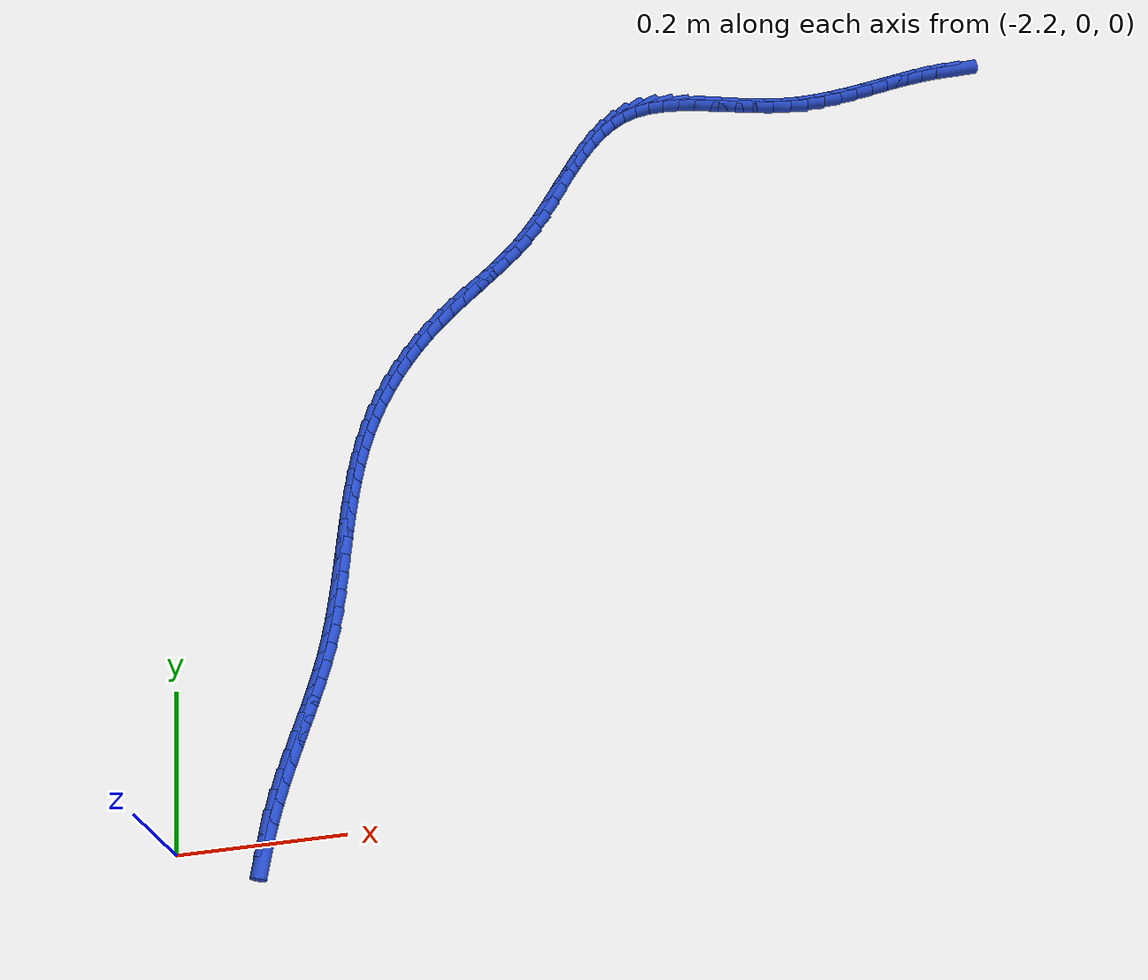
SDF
<sdf version="1.6">
 <world name="default">
  <model name="ground_plane">
   <static>1</static>
   <link name="link">
    <collision name="collision">
     <geometry><plane><normal>0 0 1</normal><size>100 100</size></plane></geometry>
     <surface><friction><ode><mu>100</mu><mu2>50</mu2></ode></friction></surface>
    </collision>
    <visual name="visual">
     <cast_shadows>0</cast_shadows>
     <geometry><plane><normal>0 0 1</normal><size>100 100</size></plane></geometry>
     <material>
      <script><uri>file://media/materials/scripts/gazebo.material</uri><name>Gazebo/WhiteGlow</name></script>
     </material>
    </visual>
   </link>
  </model>
  <model name="line">
   <link name="link_69">
    <pose>-1.0599328898154592 1.0174720443286154 0.01 0 1.57 0.06307592778197377</pose>
    <collision name="collision">
     <geometry><cylinder><radius>0.01</radius><length>0.08</length></cylinder></geometry>
    </collision>
    <visual name="visual">
     <material>
      <script><name>Gazebo/Blue</name><uri>file://media/materials/scripts/gazebo.material</uri></script>
     </material>
     <geometry><cylinder><radius>0.01</radius><length>0.08</length></cylinder></geometry>
    </visual>
   </link>
   <link name="link_70">
    <pose>-1.0827114453354116 1.0160333573258074 0.01 0 1.57 0.11936868673856314</pose>
    <collision name="collision">
     <geometry><cylinder><radius>0.01</radius><length>0.08</length></cylinder></geometry>
    </collision>
    <visual name="visual">
     <material>
      <script><name>Gazebo/Blue</name><uri>file://media/materials/scripts/gazebo.material</uri></script>
     </material>
     <geometry><cylinder><radius>0.01</radius><length>0.08</length></cylinder></geometry>
    </visual>
   </link>
   <link name="link_71">
    <pose>-1.1055416852747948 1.0132951236042014 0.01 0 1.57 0.16039445526237603</pose>
    <collision name="collision">
     <geometry><cylinder><radius>0.01</radius><length>0.08</length></cylinder></geometry>
    </collision>
    <visual name="visual">
     <material>
      <script><name>Gazebo/Blue</name><uri>file://media/materials/scripts/gazebo.material</uri></script>
     </material>
     <geometry><cylinder><radius>0.01</radius><length>0.08</length></cylinder></geometry>
    </visual>
   </link>
   <link name="link_72">
    <pose>-1.1284550450287532 1.0095881036899776 0.01 0 1.57 0.18649344169606036</pose>
    <collision name="collision">
     <geometry><cylinder><radius>0.01</radius><length>0.08</length></cylinder></geometry>
    </collision>
    <visual name="visual">
     <material>
      <script><name>Gazebo/Blue</name><uri>file://media/materials/scripts/gazebo.material</uri></script>
     </material>
     <geometry><cylinder><radius>0.01</radius><length>0.08</length></cylinder></geometry>
    </visual>
   </link>
   <link name="link_73">
    <pose>-1.1514829599924317 1.0052430581093152 0.01 0 1.57 0.1981227975161564</pose>
    <collision name="collision">
     <geometry><cylinder><radius>0.01</radius><length>0.08</length></cylinder></geometry>
    </collision>
    <visual name="visual">
     <material>
      <script><name>Gazebo/Blue</name><uri>file://media/materials/scripts/gazebo.material</uri></script>
     </material>
     <geometry><cylinder><radius>0.01</radius><length>0.08</length></cylinder></geometry>
    </visual>
   </link>
   <link name="link_74">
    <pose>-1.1746568655609722 1.0005907473883944 0.01 0 1.57 0.19568815049745364</pose>
    <collision name="collision">
     <geometry><cylinder><radius>0.01</radius><length>0.08</length></cylinder></geometry>
    </collision>
    <visual name="visual">
     <material>
      <script><name>Gazebo/Blue</name><uri>file://media/materials/scripts/gazebo.material</uri></script>
     </material>
     <geometry><cylinder><radius>0.01</radius><length>0.08</length></cylinder></geometry>
    </visual>
   </link>
   <link name="link_75">
    <pose>-1.1980081971295207 0.9959619320533951 0.01 0 1.57 0.1794790953771534</pose>
    <collision name="collision">
     <geometry><cylinder><radius>0.01</radius><length>0.08</length></cylinder></geometry>
    </collision>
    <visual name="visual">
     <material>
      <script><name>Gazebo/Blue</name><uri>file://media/materials/scripts/gazebo.material</uri></script>
     </material>
     <geometry><cylinder><radius>0.01</radius><length>0.08</length></cylinder></geometry>
    </visual>
   </link>
   <link name="link_76">
    <pose>-1.22156839009322 0.9916873726304964 0.01 0 1.57 0.14968988106606124</pose>
    <collision name="collision">
     <geometry><cylinder><radius>0.01</radius><length>0.08</length></cylinder></geometry>
    </collision>
    <visual name="visual">
     <material>
      <script><name>Gazebo/Blue</name><uri>file://media/materials/scripts/gazebo.material</uri></script>
     </material>
     <geometry><cylinder><radius>0.01</radius><length>0.08</length></cylinder></geometry>
    </visual>
   </link>
   <link name="link_77">
    <pose>-1.2453688798472144 0.9880978296458786 0.01 0 1.57 0.10651386305552568</pose>
    <collision name="collision">
     <geometry><cylinder><radius>0.01</radius><length>0.08</length></cylinder></geometry>
    </collision>
    <visual name="visual">
     <material>
      <script><name>Gazebo/Blue</name><uri>file://media/materials/scripts/gazebo.material</uri></script>
     </material>
     <geometry><cylinder><radius>0.01</radius><length>0.08</length></cylinder></geometry>
    </visual>
   </link>
   <link name="link_78">
    <pose>-1.269441101786649 0.9855240636257214 0.01 0 1.57 0.05030455684609905</pose>
    <collision name="collision">
     <geometry><cylinder><radius>0.01</radius><length>0.08</length></cylinder></geometry>
    </collision>
    <visual name="visual">
     <material>
      <script><name>Gazebo/Blue</name><uri>file://media/materials/scripts/gazebo.material</uri></script>
     </material>
     <geometry><cylinder><radius>0.01</radius><length>0.08</length></cylinder></geometry>
    </visual>
   </link>
   <link name="link_79">
    <pose>-1.2938164913066654 0.9842968350962044 0.01 0 1.57 -0.01815058307747033</pose>
    <collision name="collision">
     <geometry><cylinder><radius>0.01</radius><length>0.08</length></cylinder></geometry>
    </collision>
    <visual name="visual">
     <material>
      <script><name>Gazebo/Blue</name><uri>file://media/materials/scripts/gazebo.material</uri></script>
     </material>
     <geometry><cylinder><radius>0.01</radius><length>0.08</length></cylinder></geometry>
    </visual>
   </link>
   <link name="link_80">
    <pose>-1.3185261099796635 0.9847453783404 0.01 0 1.57 -0.08715805834930529</pose>
    <collision name="collision">
     <geometry><cylinder><radius>0.01</radius><length>0.08</length></cylinder></geometry>
    </collision>
    <visual name="visual">
     <material>
      <script><name>Gazebo/Blue</name><uri>file://media/materials/scripts/gazebo.material</uri></script>
     </material>
     <geometry><cylinder><radius>0.01</radius><length>0.08</length></cylinder></geometry>
    </visual>
   </link>
   <link name="link_81">
    <pose>-1.3435353146387479 0.986930668402171 0.01 0 1.57 -0.13483563902305598</pose>
    <collision name="collision">
     <geometry><cylinder><radius>0.01</radius><length>0.08</length></cylinder></geometry>
    </collision>
    <visual name="visual">
     <material>
      <script><name>Gazebo/Blue</name><uri>file://media/materials/scripts/gazebo.material</uri></script>
     </material>
     <geometry><cylinder><radius>0.01</radius><length>0.08</length></cylinder></geometry>
    </visual>
   </link>
   <link name="link_82">
    <pose>-1.3686690180419472 0.99034027540608 0.01 0 1.57 -0.16010407733230406</pose>
    <collision name="collision">
     <geometry><cylinder><radius>0.01</radius><length>0.08</length></cylinder></geometry>
    </collision>
    <visual name="visual">
     <material>
      <script><name>Gazebo/Blue</name><uri>file://media/materials/scripts/gazebo.material</uri></script>
     </material>
     <geometry><cylinder><radius>0.01</radius><length>0.08</length></cylinder></geometry>
    </visual>
   </link>
   <link name="link_83">
    <pose>-1.3937340482133083 0.9943879331441619 0.01 0 1.57 -0.16379808097296114</pose>
    <collision name="collision">
     <geometry><cylinder><radius>0.01</radius><length>0.08</length></cylinder></geometry>
    </collision>
    <visual name="visual">
     <material>
      <script><name>Gazebo/Blue</name><uri>file://media/materials/scripts/gazebo.material</uri></script>
     </material>
     <geometry><cylinder><radius>0.01</radius><length>0.08</length></cylinder></geometry>
    </visual>
   </link>
   <link name="link_84">
    <pose>-1.4185372331768789 0.9984873754084509 0.01 0 1.57 -0.14538295344609778</pose>
    <collision name="collision">
     <geometry><cylinder><radius>0.01</radius><length>0.08</length></cylinder></geometry>
    </collision>
    <visual name="visual">
     <material>
      <script><name>Gazebo/Blue</name><uri>file://media/materials/scripts/gazebo.material</uri></script>
     </material>
     <geometry><cylinder><radius>0.01</radius><length>0.08</length></cylinder></geometry>
    </visual>
   </link>
   <link name="link_85">
    <pose>-1.4428854009567063 1.002052335990982 0.01 0 1.57 -0.10276810762414201</pose>
    <collision name="collision">
     <geometry><cylinder><radius>0.01</radius><length>0.08</length></cylinder></geometry>
    </collision>
    <visual name="visual">
     <material>
      <script><name>Gazebo/Blue</name><uri>file://media/materials/scripts/gazebo.material</uri></script>
     </material>
     <geometry><cylinder><radius>0.01</radius><length>0.08</length></cylinder></geometry>
    </visual>
   </link>
   <link name="link_86">
    <pose>-1.4665853795768375 1.00449654868379 0.01 0 1.57 -0.03223918383461462</pose>
    <collision name="collision">
     <geometry><cylinder><radius>0.01</radius><length>0.08</length></cylinder></geometry>
    </collision>
    <visual name="visual">
     <material>
      <script><name>Gazebo/Blue</name><uri>file://media/materials/scripts/gazebo.material</uri></script>
     </material>
     <geometry><cylinder><radius>0.01</radius><length>0.08</length></cylinder></geometry>
    </visual>
   </link>
   <link name="link_87">
    <pose>-1.4894439970613207 1.0052337472789095 0.01 0 1.57 0.07118066153074996</pose>
    <collision name="collision">
     <geometry><cylinder><radius>0.01</radius><length>0.08</length></cylinder></geometry>
    </collision>
    <visual name="visual">
     <material>
      <script><name>Gazebo/Blue</name><uri>file://media/materials/scripts/gazebo.material</uri></script>
     </material>
     <geometry><cylinder><radius>0.01</radius><length>0.08</length></cylinder></geometry>
    </visual>
   </link>
   <link name="link_88">
    <pose>-1.5112680814342019 1.0036776655683748 0.01 0 1.57 0.21211985672493155</pose>
    <collision name="collision">
     <geometry><cylinder><radius>0.01</radius><length>0.08</length></cylinder></geometry>
    </collision>
    <visual name="visual">
     <material>
      <script><name>Gazebo/Blue</name><uri>file://media/materials/scripts/gazebo.material</uri></script>
     </material>
     <geometry><cylinder><radius>0.01</radius><length>0.08</length></cylinder></geometry>
    </visual>
   </link>
   <link name="link_89">
    <pose>-1.5318644607195286 0.999242037344221 0.01 0 1.57 0.3878888406233534</pose>
    <collision name="collision">
     <geometry><cylinder><radius>0.01</radius><length>0.08</length></cylinder></geometry>
    </collision>
    <visual name="visual">
     <material>
      <script><name>Gazebo/Blue</name><uri>file://media/materials/scripts/gazebo.material</uri></script>
     </material>
     <geometry><cylinder><radius>0.01</radius><length>0.08</length></cylinder></geometry>
    </visual>
   </link>
   <link name="link_90">
    <pose>-1.5510620090791942 0.9913981268513146 0.01 0 1.57 0.5585127356502102</pose>
    <collision name="collision">
     <geometry><cylinder><radius>0.01</radius><length>0.08</length></cylinder></geometry>
    </collision>
    <visual name="visual">
     <material>
      <script><name>Gazebo/Blue</name><uri>file://media/materials/scripts/gazebo.material</uri></script>
     </material>
     <geometry><cylinder><radius>0.01</radius><length>0.08</length></cylinder></geometry>
    </visual>
   </link>
   <link name="link_91">
    <pose>-1.5689263677727396 0.9802350534182234 0.01 0 1.57 0.6970877737793484</pose>
    <collision name="collision">
     <geometry><cylinder><radius>0.01</radius><length>0.08</length></cylinder></geometry>
    </collision>
    <visual name="visual">
     <material>
      <script><name>Gazebo/Blue</name><uri>file://media/materials/scripts/gazebo.material</uri></script>
     </material>
     <geometry><cylinder><radius>0.01</radius><length>0.08</length></cylinder></geometry>
    </visual>
   </link>
   <link name="link_92">
    <pose>-1.5856671459478928 0.96621762747456 0.01 0 1.57 0.8031688857201666</pose>
    <collision name="collision">
     <geometry><cylinder><radius>0.01</radius><length>0.08</length></cylinder></geometry>
    </collision>
    <visual name="visual">
     <material>
      <script><name>Gazebo/Blue</name><uri>file://media/materials/scripts/gazebo.material</uri></script>
     </material>
     <geometry><cylinder><radius>0.01</radius><length>0.08</length></cylinder></geometry>
    </visual>
   </link>
   <link name="link_93">
    <pose>-1.6014959867010399 0.9498159671363919 0.01 0 1.57 0.880410808872035</pose>
    <collision name="collision">
     <geometry><cylinder><radius>0.01</radius><length>0.08</length></cylinder></geometry>
    </collision>
    <visual name="visual">
     <material>
      <script><name>Gazebo/Blue</name><uri>file://media/materials/scripts/gazebo.material</uri></script>
     </material>
     <geometry><cylinder><radius>0.01</radius><length>0.08</length></cylinder></geometry>
    </visual>
   </link>
   <link name="link_94">
    <pose>-1.6166245331285674 0.9315001905197868 0.01 0 1.57 0.9331486860984257</pose>
    <collision name="collision">
     <geometry><cylinder><radius>0.01</radius><length>0.08</length></cylinder></geometry>
    </collision>
    <visual name="visual">
     <material>
      <script><name>Gazebo/Blue</name><uri>file://media/materials/scripts/gazebo.material</uri></script>
     </material>
     <geometry><cylinder><radius>0.01</radius><length>0.08</length></cylinder></geometry>
    </visual>
   </link>
   <link name="link_95">
    <pose>-1.6312644283268596 0.911740415740811 0.01 0 1.57 0.9649642072845664</pose>
    <collision name="collision">
     <geometry><cylinder><radius>0.01</radius><length>0.08</length></cylinder></geometry>
    </collision>
    <visual name="visual">
     <material>
      <script><name>Gazebo/Blue</name><uri>file://media/materials/scripts/gazebo.material</uri></script>
     </material>
     <geometry><cylinder><radius>0.01</radius><length>0.08</length></cylinder></geometry>
    </visual>
   </link>
   <link name="link_96">
    <pose>-1.6456273153923022 0.891006760915533 0.01 0 1.57 0.9782682983899156</pose>
    <collision name="collision">
     <geometry><cylinder><radius>0.01</radius><length>0.08</length></cylinder></geometry>
    </collision>
    <visual name="visual">
     <material>
      <script><name>Gazebo/Blue</name><uri>file://media/materials/scripts/gazebo.material</uri></script>
     </material>
     <geometry><cylinder><radius>0.01</radius><length>0.08</length></cylinder></geometry>
    </visual>
   </link>
   <link name="link_97">
    <pose>-1.6599248374212805 0.8697693441600195 0.01 0 1.57 0.9742796628503599</pose>
    <collision name="collision">
     <geometry><cylinder><radius>0.01</radius><length>0.08</length></cylinder></geometry>
    </collision>
    <visual name="visual">
     <material>
      <script><name>Gazebo/Blue</name><uri>file://media/materials/scripts/gazebo.material</uri></script>
     </material>
     <geometry><cylinder><radius>0.01</radius><length>0.08</length></cylinder></geometry>
    </visual>
   </link>
   <link name="link_98">
    <pose>-1.6743686375101796 0.8484982835903376 0.01 0 1.57 0.9530980329613442</pose>
    <collision name="collision">
     <geometry><cylinder><radius>0.01</radius><length>0.08</length></cylinder></geometry>
    </collision>
    <visual name="visual">
     <material>
      <script><name>Gazebo/Blue</name><uri>file://media/materials/scripts/gazebo.material</uri></script>
     </material>
     <geometry><cylinder><radius>0.01</radius><length>0.08</length></cylinder></geometry>
    </visual>
   </link>
   <link name="link_99">
    <pose>-1.6891703587553855 0.8276636973225554 0.01 0 1.57 0.9137760798677704</pose>
    <collision name="collision">
     <geometry><cylinder><radius>0.01</radius><length>0.08</length></cylinder></geometry>
    </collision>
    <visual name="visual">
     <material>
      <script><name>Gazebo/Blue</name><uri>file://media/materials/scripts/gazebo.material</uri></script>
     </material>
     <geometry><cylinder><radius>0.01</radius><length>0.08</length></cylinder></geometry>
    </visual>
   </link>
   <link name="link_100">
    <pose>-1.7045416442532844 0.8077357034727393 0.01 0 1.57 0.8559955010344802</pose>
    <collision name="collision">
     <geometry><cylinder><radius>0.01</radius><length>0.08</length></cylinder></geometry>
    </collision>
    <visual name="visual">
     <material>
      <script><name>Gazebo/Blue</name><uri>file://media/materials/scripts/gazebo.material</uri></script>
     </material>
     <geometry><cylinder><radius>0.01</radius><length>0.08</length></cylinder></geometry>
    </visual>
   </link>
   <link name="link_101">
    <pose>-1.7206748144702826 0.7891471946806231 0.01 0 1.57 0.7975324860518057</pose>
    <collision name="collision">
     <geometry><cylinder><radius>0.01</radius><length>0.08</length></cylinder></geometry>
    </collision>
    <visual name="visual">
     <material>
      <script><name>Gazebo/Blue</name><uri>file://media/materials/scripts/gazebo.material</uri></script>
     </material>
     <geometry><cylinder><radius>0.01</radius><length>0.08</length></cylinder></geometry>
    </visual>
   </link>
   <link name="link_102">
    <pose>-1.737528023401738 0.7718799366722274 0.01 0 1.57 0.7523718968551583</pose>
    <collision name="collision">
     <geometry><cylinder><radius>0.01</radius><length>0.08</length></cylinder></geometry>
    </collision>
    <visual name="visual">
     <material>
      <script><name>Gazebo/Blue</name><uri>file://media/materials/scripts/gazebo.material</uri></script>
     </material>
     <geometry><cylinder><radius>0.01</radius><length>0.08</length></cylinder></geometry>
    </visual>
   </link>
   <link name="link_103">
    <pose>-1.7549036925361503 0.7556156730360405 0.01 0 1.57 0.7220029866958872</pose>
    <collision name="collision">
     <geometry><cylinder><radius>0.01</radius><length>0.08</length></cylinder></geometry>
    </collision>
    <visual name="visual">
     <material>
      <script><name>Gazebo/Blue</name><uri>file://media/materials/scripts/gazebo.material</uri></script>
     </material>
     <geometry><cylinder><radius>0.01</radius><length>0.08</length></cylinder></geometry>
    </visual>
   </link>
   <link name="link_104">
    <pose>-1.772601430320051 0.7400307279726472 0.01 0 1.57 0.7071854755017511</pose>
    <collision name="collision">
     <geometry><cylinder><radius>0.01</radius><length>0.08</length></cylinder></geometry>
    </collision>
    <visual name="visual">
     <material>
      <script><name>Gazebo/Blue</name><uri>file://media/materials/scripts/gazebo.material</uri></script>
     </material>
     <geometry><cylinder><radius>0.01</radius><length>0.08</length></cylinder></geometry>
    </visual>
   </link>
   <link name="link_105">
    <pose>-1.7904208451999728 0.724801425682633 0.01 0 1.57 0.7083344225783952</pose>
    <collision name="collision">
     <geometry><cylinder><radius>0.01</radius><length>0.08</length></cylinder></geometry>
    </collision>
    <visual name="visual">
     <material>
      <script><name>Gazebo/Blue</name><uri>file://media/materials/scripts/gazebo.material</uri></script>
     </material>
     <geometry><cylinder><radius>0.01</radius><length>0.08</length></cylinder></geometry>
    </visual>
   </link>
   <link name="link_106">
    <pose>-1.808161545622449 0.7096040903665838 0.01 0 1.57 0.7256057258436636</pose>
    <collision name="collision">
     <geometry><cylinder><radius>0.01</radius><length>0.08</length></cylinder></geometry>
    </collision>
    <visual name="visual">
     <material>
      <script><name>Gazebo/Blue</name><uri>file://media/materials/scripts/gazebo.material</uri></script>
     </material>
     <geometry><cylinder><radius>0.01</radius><length>0.08</length></cylinder></geometry>
    </visual>
   </link>
   <link name="link_107">
    <pose>-1.8256231400340117 0.6941150462250842 0.01 0 1.57 0.758877932166949</pose>
    <collision name="collision">
     <geometry><cylinder><radius>0.01</radius><length>0.08</length></cylinder></geometry>
    </collision>
    <visual name="visual">
     <material>
      <script><name>Gazebo/Blue</name><uri>file://media/materials/scripts/gazebo.material</uri></script>
     </material>
     <geometry><cylinder><radius>0.01</radius><length>0.08</length></cylinder></geometry>
    </visual>
   </link>
   <link name="link_108">
    <pose>-1.842605236881194 0.6780106174587198 0.01 0 1.57 0.8057961049189927</pose>
    <collision name="collision">
     <geometry><cylinder><radius>0.01</radius><length>0.08</length></cylinder></geometry>
    </collision>
    <visual name="visual">
     <material>
      <script><name>Gazebo/Blue</name><uri>file://media/materials/scripts/gazebo.material</uri></script>
     </material>
     <geometry><cylinder><radius>0.01</radius><length>0.08</length></cylinder></geometry>
    </visual>
   </link>
   <link name="link_109">
    <pose>-1.858921699658098 0.6610145534506484 0.01 0 1.57 0.8559095049342595</pose>
    <collision name="collision">
     <geometry><cylinder><radius>0.01</radius><length>0.08</length></cylinder></geometry>
    </collision>
    <visual name="visual">
     <material>
      <script><name>Gazebo/Blue</name><uri>file://media/materials/scripts/gazebo.material</uri></script>
     </material>
     <geometry><cylinder><radius>0.01</radius><length>0.08</length></cylinder></geometry>
    </visual>
   </link>
   <link name="link_110">
    <pose>-1.8744642572833088 0.6431096544187846 0.01 0 1.57 0.9061396930807545</pose>
    <collision name="collision">
     <geometry><cylinder><radius>0.01</radius><length>0.08</length></cylinder></geometry>
    </collision>
    <visual name="visual">
     <material>
      <script><name>Gazebo/Blue</name><uri>file://media/materials/scripts/gazebo.material</uri></script>
     </material>
     <geometry><cylinder><radius>0.01</radius><length>0.08</length></cylinder></geometry>
    </visual>
   </link>
   <link name="link_111">
    <pose>-1.889151092295235 0.6243667292491083 0.01 0 1.57 0.9569034292529092</pose>
    <collision name="collision">
     <geometry><cylinder><radius>0.01</radius><length>0.08</length></cylinder></geometry>
    </collision>
    <visual name="visual">
     <material>
      <script><name>Gazebo/Blue</name><uri>file://media/materials/scripts/gazebo.material</uri></script>
     </material>
     <geometry><cylinder><radius>0.01</radius><length>0.08</length></cylinder></geometry>
    </visual>
   </link>
   <link name="link_112">
    <pose>-1.9029004089729453 0.6048566591566995 0.01 0 1.57 1.008609146119506</pose>
    <collision name="collision">
     <geometry><cylinder><radius>0.01</radius><length>0.08</length></cylinder></geometry>
    </collision>
    <visual name="visual">
     <material>
      <script><name>Gazebo/Blue</name><uri>file://media/materials/scripts/gazebo.material</uri></script>
     </material>
     <geometry><cylinder><radius>0.01</radius><length>0.08</length></cylinder></geometry>
    </visual>
   </link>
   <link name="link_113">
    <pose>-1.9156304115955083 0.584650325356638 0.01 0 1.57 1.0616563224209234</pose>
    <collision name="collision">
     <geometry><cylinder><radius>0.01</radius><length>0.08</length></cylinder></geometry>
    </collision>
    <visual name="visual">
     <material>
      <script><name>Gazebo/Blue</name><uri>file://media/materials/scripts/gazebo.material</uri></script>
     </material>
     <geometry><cylinder><radius>0.01</radius><length>0.08</length></cylinder></geometry>
    </visual>
   </link>
   <link name="link_114">
    <pose>-1.92725930444199 0.5638186090640037 0.01 0 1.57 1.1164355143466824</pose>
    <collision name="collision">
     <geometry><cylinder><radius>0.01</radius><length>0.08</length></cylinder></geometry>
    </collision>
    <visual name="visual">
     <material>
      <script><name>Gazebo/Blue</name><uri>file://media/materials/scripts/gazebo.material</uri></script>
     </material>
     <geometry><cylinder><radius>0.01</radius><length>0.08</length></cylinder></geometry>
    </visual>
   </link>
   <link name="link_115">
    <pose>-1.9377052917914606 0.5424323914938775 0.01 0 1.57 1.1732301114542298</pose>
    <collision name="collision">
     <geometry><cylinder><radius>0.01</radius><length>0.08</length></cylinder></geometry>
    </collision>
    <visual name="visual">
     <material>
      <script><name>Gazebo/Blue</name><uri>file://media/materials/scripts/gazebo.material</uri></script>
     </material>
     <geometry><cylinder><radius>0.01</radius><length>0.08</length></cylinder></geometry>
    </visual>
   </link>
   <link name="link_116">
    <pose>-1.9468890710955187 0.5205624661918841 0.01 0 1.57 1.2283323541265865</pose>
    <collision name="collision">
     <geometry><cylinder><radius>0.01</radius><length>0.08</length></cylinder></geometry>
    </collision>
    <visual name="visual">
     <material>
      <script><name>Gazebo/Blue</name><uri>file://media/materials/scripts/gazebo.material</uri></script>
     </material>
     <geometry><cylinder><radius>0.01</radius><length>0.08</length></cylinder></geometry>
    </visual>
   </link>
   <link name="link_117">
    <pose>-1.9548344543313327 0.49827600080368467 0.01 0 1.57 1.276252975897163</pose>
    <collision name="collision">
     <geometry><cylinder><radius>0.01</radius><length>0.08</length></cylinder></geometry>
    </collision>
    <visual name="visual">
     <material>
      <script><name>Gazebo/Blue</name><uri>file://media/materials/scripts/gazebo.material</uri></script>
     </material>
     <geometry><cylinder><radius>0.01</radius><length>0.08</length></cylinder></geometry>
    </visual>
   </link>
   <link name="link_118">
    <pose>-1.9617028996546562 0.47563532281036447 0.01 0 1.57 1.3164285867788437</pose>
    <collision name="collision">
     <geometry><cylinder><radius>0.01</radius><length>0.08</length></cylinder></geometry>
    </collision>
    <visual name="visual">
     <material>
      <script><name>Gazebo/Blue</name><uri>file://media/materials/scripts/gazebo.material</uri></script>
     </material>
     <geometry><cylinder><radius>0.01</radius><length>0.08</length></cylinder></geometry>
    </visual>
   </link>
   <link name="link_119">
    <pose>-1.9676654458582215 0.45270242280127415 0.01 0 1.57 1.348825281284382</pose>
    <collision name="collision">
     <geometry><cylinder><radius>0.01</radius><length>0.08</length></cylinder></geometry>
    </collision>
    <visual name="visual">
     <material>
      <script><name>Gazebo/Blue</name><uri>file://media/materials/scripts/gazebo.material</uri></script>
     </material>
     <geometry><cylinder><radius>0.01</radius><length>0.08</length></cylinder></geometry>
    </visual>
   </link>
   <link name="link_120">
    <pose>-1.97289313173476 0.4295392913657644 0.01 0 1.57 1.3735000950792597</pose>
    <collision name="collision">
     <geometry><cylinder><radius>0.01</radius><length>0.08</length></cylinder></geometry>
    </collision>
    <visual name="visual">
     <material>
      <script><name>Gazebo/Blue</name><uri>file://media/materials/scripts/gazebo.material</uri></script>
     </material>
     <geometry><cylinder><radius>0.01</radius><length>0.08</length></cylinder></geometry>
    </visual>
   </link>
   <link name="link_121">
    <pose>-1.9775569960770019 0.40620791909318604 0.01 0 1.57 1.3905424134326463</pose>
    <collision name="collision">
     <geometry><cylinder><radius>0.01</radius><length>0.08</length></cylinder></geometry>
    </collision>
    <visual name="visual">
     <material>
      <script><name>Gazebo/Blue</name><uri>file://media/materials/scripts/gazebo.material</uri></script>
     </material>
     <geometry><cylinder><radius>0.01</radius><length>0.08</length></cylinder></geometry>
    </visual>
   </link>
   <link name="link_122">
    <pose>-1.9818280776776798 0.3827702965728898 0.01 0 1.57 1.4000306242163725</pose>
    <collision name="collision">
     <geometry><cylinder><radius>0.01</radius><length>0.08</length></cylinder></geometry>
    </collision>
    <visual name="visual">
     <material>
      <script><name>Gazebo/Blue</name><uri>file://media/materials/scripts/gazebo.material</uri></script>
     </material>
     <geometry><cylinder><radius>0.01</radius><length>0.08</length></cylinder></geometry>
    </visual>
   </link>
   <link name="link_123">
    <pose>-1.9858774153295247 0.3592884143942272 0.01 0 1.57 1.4020033028549446</pose>
    <collision name="collision">
     <geometry><cylinder><radius>0.01</radius><length>0.08</length></cylinder></geometry>
    </collision>
    <visual name="visual">
     <material>
      <script><name>Gazebo/Blue</name><uri>file://media/materials/scripts/gazebo.material</uri></script>
     </material>
     <geometry><cylinder><radius>0.01</radius><length>0.08</length></cylinder></geometry>
    </visual>
   </link>
   <link name="link_124">
    <pose>-1.9898760478252684 0.33582426314654873 0.01 0 1.57 1.3964433944768775</pose>
    <collision name="collision">
     <geometry><cylinder><radius>0.01</radius><length>0.08</length></cylinder></geometry>
    </collision>
    <visual name="visual">
     <material>
      <script><name>Gazebo/Blue</name><uri>file://media/materials/scripts/gazebo.material</uri></script>
     </material>
     <geometry><cylinder><radius>0.01</radius><length>0.08</length></cylinder></geometry>
    </visual>
   </link>
   <link name="link_125">
    <pose>-1.9939950139576414 0.31243983341920517 0.01 0 1.57 1.383274314745042</pose>
    <collision name="collision">
     <geometry><cylinder><radius>0.01</radius><length>0.08</length></cylinder></geometry>
    </collision>
    <visual name="visual">
     <material>
      <script><name>Gazebo/Blue</name><uri>file://media/materials/scripts/gazebo.material</uri></script>
     </material>
     <geometry><cylinder><radius>0.01</radius><length>0.08</length></cylinder></geometry>
    </visual>
   </link>
   <link name="link_126">
    <pose>-1.9984053525193768 0.2891971158015473 0.01 0 1.57 1.362368000612903</pose>
    <collision name="collision">
     <geometry><cylinder><radius>0.01</radius><length>0.08</length></cylinder></geometry>
    </collision>
    <visual name="visual">
     <material>
      <script><name>Gazebo/Blue</name><uri>file://media/materials/scripts/gazebo.material</uri></script>
     </material>
     <geometry><cylinder><radius>0.01</radius><length>0.08</length></cylinder></geometry>
    </visual>
   </link>
   <link name="link_127">
    <pose>-2.003278102303205 0.2661581008829264 0.01 0 1.57 1.3335662292514299</pose>
    <collision name="collision">
     <geometry><cylinder><radius>0.01</radius><length>0.08</length></cylinder></geometry>
    </collision>
    <visual name="visual">
     <material>
      <script><name>Gazebo/Blue</name><uri>file://media/materials/scripts/gazebo.material</uri></script>
     </material>
     <geometry><cylinder><radius>0.01</radius><length>0.08</length></cylinder></geometry>
    </visual>
   </link>
   <link name="link_128">
    <pose>-2.0087843021018568 0.2433847792526932 0.01 0 1.57 1.296734650177814</pose>
    <collision name="collision">
     <geometry><cylinder><radius>0.01</radius><length>0.08</length></cylinder></geometry>
    </collision>
    <visual name="visual">
     <material>
      <script><name>Gazebo/Blue</name><uri>file://media/materials/scripts/gazebo.material</uri></script>
     </material>
     <geometry><cylinder><radius>0.01</radius><length>0.08</length></cylinder></geometry>
    </visual>
   </link>
   <link name="link_129">
    <pose>-2.0150946253811908 0.22093896520659895 0.01 0 1.57 1.2565068963530583</pose>
    <collision name="collision">
     <geometry><cylinder><radius>0.01</radius><length>0.08</length></cylinder></geometry>
    </collision>
    <visual name="visual">
     <material>
      <script><name>Gazebo/Blue</name><uri>file://media/materials/scripts/gazebo.material</uri></script>
     </material>
     <geometry><cylinder><radius>0.01</radius><length>0.08</length></cylinder></geometry>
    </visual>
   </link>
   <link name="link_130">
    <pose>-2.022280030105371 0.19883435392842608 0.01 0 1.57 1.2241785798979505</pose>
    <collision name="collision">
     <geometry><cylinder><radius>0.01</radius><length>0.08</length></cylinder></geometry>
    </collision>
    <visual name="visual">
     <material>
      <script><name>Gazebo/Blue</name><uri>file://media/materials/scripts/gazebo.material</uri></script>
     </material>
     <geometry><cylinder><radius>0.01</radius><length>0.08</length></cylinder></geometry>
    </visual>
   </link>
   <link name="link_131">
    <pose>-2.0301769166240673 0.17697145153984434 0.01 0 1.57 1.201591980708671</pose>
    <collision name="collision">
     <geometry><cylinder><radius>0.01</radius><length>0.08</length></cylinder></geometry>
    </collision>
    <visual name="visual">
     <material>
      <script><name>Gazebo/Blue</name><uri>file://media/materials/scripts/gazebo.material</uri></script>
     </material>
     <geometry><cylinder><radius>0.01</radius><length>0.08</length></cylinder></geometry>
    </visual>
   </link>
   <link name="link_132">
    <pose>-2.03858798749009 0.1552345028186745 0.01 0 1.57 1.1888125237527398</pose>
    <collision name="collision">
     <geometry><cylinder><radius>0.01</radius><length>0.08</length></cylinder></geometry>
    </collision>
    <visual name="visual">
     <material>
      <script><name>Gazebo/Blue</name><uri>file://media/materials/scripts/gazebo.material</uri></script>
     </material>
     <geometry><cylinder><radius>0.01</radius><length>0.08</length></cylinder></geometry>
    </visual>
   </link>
   <link name="link_133">
    <pose>-2.0473159452562486 0.13350775254273622 0.01 0 1.57 1.1857721086222544</pose>
    <collision name="collision">
     <geometry><cylinder><radius>0.01</radius><length>0.08</length></cylinder></geometry>
    </collision>
    <visual name="visual">
     <material>
      <script><name>Gazebo/Blue</name><uri>file://media/materials/scripts/gazebo.material</uri></script>
     </material>
     <geometry><cylinder><radius>0.01</radius><length>0.08</length></cylinder></geometry>
    </visual>
   </link>
   <link name="link_134">
    <pose>-2.056163492475354 0.11167544548984963 0.01 0 1.57 1.192308931952606</pose>
    <collision name="collision">
     <geometry><cylinder><radius>0.01</radius><length>0.08</length></cylinder></geometry>
    </collision>
    <visual name="visual">
     <material>
      <script><name>Gazebo/Blue</name><uri>file://media/materials/scripts/gazebo.material</uri></script>
     </material>
     <geometry><cylinder><radius>0.01</radius><length>0.08</length></cylinder></geometry>
    </visual>
   </link>
   <link name="link_135">
    <pose>-2.064933331700217 0.08962182643783434 0.01 0 1.57 1.2081812324749797</pose>
    <collision name="collision">
     <geometry><cylinder><radius>0.01</radius><length>0.08</length></cylinder></geometry>
    </collision>
    <visual name="visual">
     <material>
      <script><name>Gazebo/Blue</name><uri>file://media/materials/scripts/gazebo.material</uri></script>
     </material>
     <geometry><cylinder><radius>0.01</radius><length>0.08</length></cylinder></geometry>
    </visual>
   </link>
   <link name="link_136">
    <pose>-2.073428165483647 0.06723114016451112 0.01 0 1.57 1.2330571273184296</pose>
    <collision name="collision">
     <geometry><cylinder><radius>0.01</radius><length>0.08</length></cylinder></geometry>
    </collision>
    <visual name="visual">
     <material>
      <script><name>Gazebo/Blue</name><uri>file://media/materials/scripts/gazebo.material</uri></script>
     </material>
     <geometry><cylinder><radius>0.01</radius><length>0.08</length></cylinder></geometry>
    </visual>
   </link>
   <link name="link_137">
    <pose>-2.0814506963784534 0.04438763144769965 0.01 0 1.57 1.2664457687484791</pose>
    <collision name="collision">
     <geometry><cylinder><radius>0.01</radius><length>0.08</length></cylinder></geometry>
    </collision>
    <visual name="visual">
     <material>
      <script><name>Gazebo/Blue</name><uri>file://media/materials/scripts/gazebo.material</uri></script>
     </material>
     <geometry><cylinder><radius>0.01</radius><length>0.08</length></cylinder></geometry>
    </visual>
   </link>
   <link name="link_138">
    <pose>-2.088804234842382 0.020976887687902342 0.01 0 1.57 1.3052134021841537</pose>
    <collision name="collision">
     <geometry><cylinder><radius>0.01</radius><length>0.08</length></cylinder></geometry>
    </collision>
    <visual name="visual">
     <material>
      <script><name>Gazebo/Blue</name><uri>file://media/materials/scripts/gazebo.material</uri></script>
     </material>
     <geometry><cylinder><radius>0.01</radius><length>0.08</length></cylinder></geometry>
    </visual>
   </link>
   <link name="link_139">
    <pose>-2.095332996278438 -0.003025160793633577 0.01 0 1.57 1.3452769497337542</pose>
    <collision name="collision">
     <geometry><cylinder><radius>0.01</radius><length>0.08</length></cylinder></geometry>
    </collision>
    <visual name="visual">
     <material>
      <script><name>Gazebo/Blue</name><uri>file://media/materials/scripts/gazebo.material</uri></script>
     </material>
     <geometry><cylinder><radius>0.01</radius><length>0.08</length></cylinder></geometry>
    </visual>
   </link>
  </model>
 </world>
</sdf>
